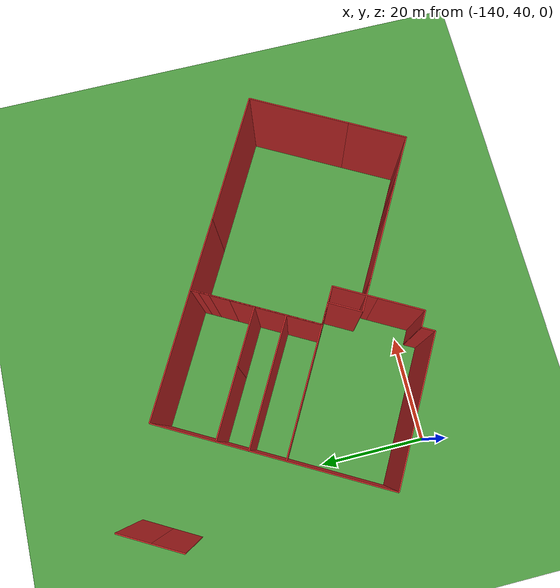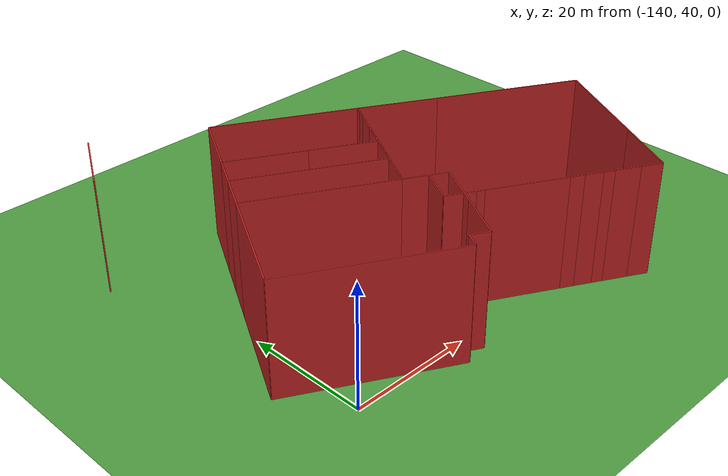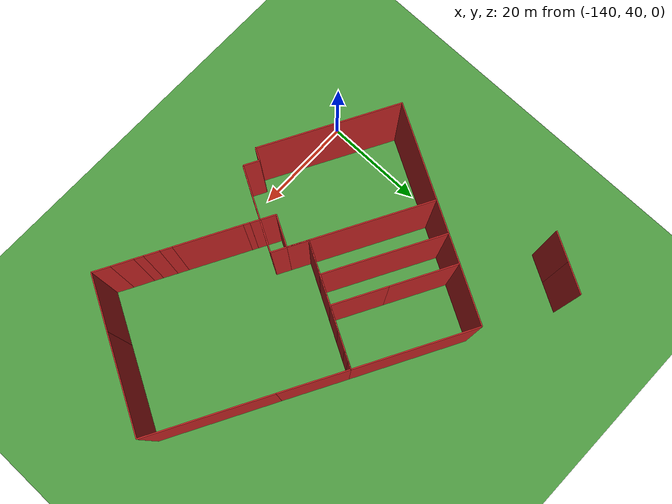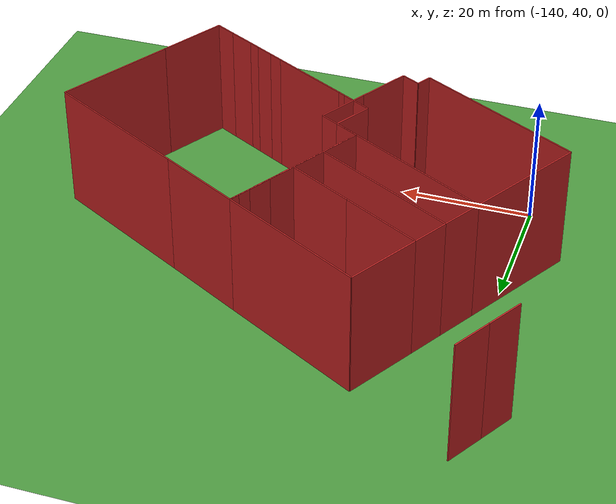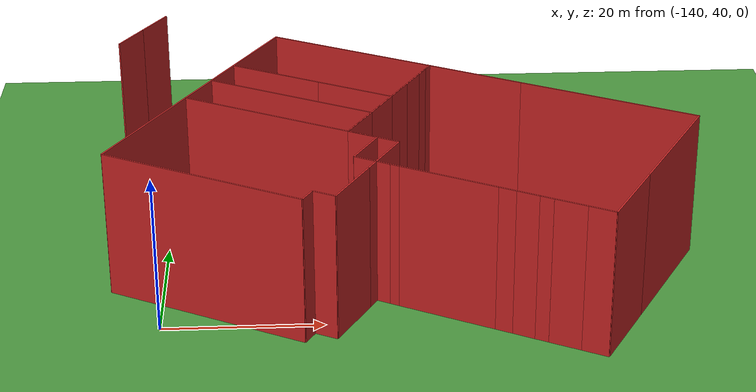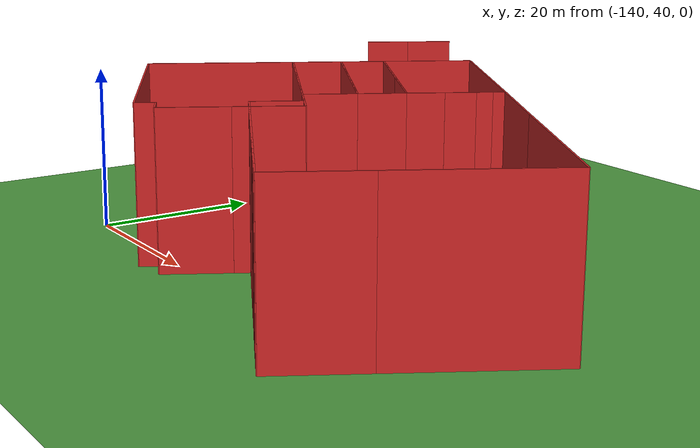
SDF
<sdf version="1.4">
 <world name="default">
  <model name="ground">
   <static>true</static>
   <link name="link">
    <collision name="collision">
     <geometry><plane><size>10000 10000</size><normal>0 0 1</normal></plane></geometry>
     <surface><friction><ode><mu>100</mu><mu2>50</mu2></ode></friction></surface>
    </collision>
    <visual name="visual">
     <pose>0 0 -1 0 0 0</pose>
     <geometry><plane><normal>0 0 1</normal><size>10000 10000</size></plane></geometry>
     <material>
      <script><uri>file://media/materials/scripts/gazebo.material</uri><name>Gazebo/Grass</name></script>
     </material>
    </visual>
   </link>
  </model>
  <include><uri>model://sun</uri></include>
  <model name="office_building_266170557">
   <static>true</static>
   <pose>-143.218481475 92.8817894273 0.0 0 0 0</pose>
   <link name="office_building_266170557_0">
    <collision name="office_building_266170557_0">
     <geometry><box><size>6.12261118915 0.2 20.0</size></box></geometry>
    </collision>
    <visual name="office_building_266170557_0">
     <geometry><box><size>6.12261118915 0.2 20.0</size></box></geometry>
     <material>
      <script><uri>file://media/materials/scripts/gazebo.material</uri><name>Gazebo/Red</name></script>
     </material>
    </visual>
    <pose>0.0 0.0 9.0 0 0 1.0624477169</pose>
   </link>
  </model>
  <model name="office_building_266170802">
   <static>true</static>
   <pose>-116.339171166 74.1470060557 0.0 0 0 0</pose>
   <link name="office_building_266170802_0">
    <collision name="office_building_266170802_0">
     <geometry><box><size>11.5167518871 0.2 20.0</size></box></geometry>
    </collision>
    <visual name="office_building_266170802_0">
     <geometry><box><size>11.5167518871 0.2 20.0</size></box></geometry>
     <material>
      <script><uri>file://media/materials/scripts/gazebo.material</uri><name>Gazebo/Red</name></script>
     </material>
    </visual>
    <pose>-12.4129806976 7.59554542883 9.0 0 0 -2.07680924051</pose>
   </link>
   <link name="office_building_266170802_1">
    <collision name="office_building_266170802_1">
     <geometry><box><size>23.5856436769 0.2 20.0</size></box></geometry>
    </collision>
    <visual name="office_building_266170802_1">
     <geometry><box><size>23.5856436769 0.2 20.0</size></box></geometry>
     <material>
      <script><uri>file://media/materials/scripts/gazebo.material</uri><name>Gazebo/Red</name></script>
     </material>
    </visual>
    <pose>0.719133637422 6.96370672885 9.0 0 0 2.64016030013</pose>
   </link>
   <link name="office_building_266170802_2">
    <collision name="office_building_266170802_2">
     <geometry><box><size>1.4721142379 0.2 20.0</size></box></geometry>
    </collision>
    <visual name="office_building_266170802_2">
     <geometry><box><size>1.4721142379 0.2 20.0</size></box></geometry>
     <material>
      <script><uri>file://media/materials/scripts/gazebo.material</uri><name>Gazebo/Red</name></script>
     </material>
    </visual>
    <pose>10.7043693283 0.650775992279 9.0 0 0 1.06623035552</pose>
   </link>
   <link name="office_building_266170802_3">
    <collision name="office_building_266170802_3">
     <geometry><box><size>1.93353271804 0.2 20.0</size></box></geometry>
    </collision>
    <visual name="office_building_266170802_3">
     <geometry><box><size>1.93353271804 0.2 20.0</size></box></geometry>
     <material>
      <script><uri>file://media/materials/scripts/gazebo.material</uri><name>Gazebo/Red</name></script>
     </material>
    </visual>
    <pose>9.88151195634 -0.840033664095 9.0 0 0 1.06662544754</pose>
   </link>
   <link name="office_building_266170802_4">
    <collision name="office_building_266170802_4">
     <geometry><box><size>3.68397356421 0.2 20.0</size></box></geometry>
    </collision>
    <visual name="office_building_266170802_4">
     <geometry><box><size>3.68397356421 0.2 20.0</size></box></geometry>
     <material>
      <script><uri>file://media/materials/scripts/gazebo.material</uri><name>Gazebo/Red</name></script>
     </material>
    </visual>
    <pose>8.52490999627 -3.29944930305 9.0 0 0 1.06678363676</pose>
   </link>
   <link name="office_building_266170802_5">
    <collision name="office_building_266170802_5">
     <geometry><box><size>4.44922070025 0.2 20.0</size></box></geometry>
    </collision>
    <visual name="office_building_266170802_5">
     <geometry><box><size>4.44922070025 0.2 20.0</size></box></geometry>
     <material>
      <script><uri>file://media/materials/scripts/gazebo.material</uri><name>Gazebo/Red</name></script>
     </material>
    </visual>
    <pose>6.55672662293 -6.85802302474 9.0 0 0 1.06460150268</pose>
   </link>
   <link name="office_building_266170802_6">
    <collision name="office_building_266170802_6">
     <geometry><box><size>10.7073042722 0.2 20.0</size></box></geometry>
    </collision>
    <visual name="office_building_266170802_6">
     <geometry><box><size>10.7073042722 0.2 20.0</size></box></geometry>
     <material>
      <script><uri>file://media/materials/scripts/gazebo.material</uri><name>Gazebo/Red</name></script>
     </material>
    </visual>
    <pose>0.785715901424 -6.22626526592 9.0 0 0 -0.502282057918</pose>
   </link>
   <link name="office_building_266170802_7">
    <collision name="office_building_266170802_7">
     <geometry><box><size>12.8904997095 0.2 20.0</size></box></geometry>
    </collision>
    <visual name="office_building_266170802_7">
     <geometry><box><size>12.8904997095 0.2 20.0</size></box></geometry>
     <material>
      <script><uri>file://media/materials/scripts/gazebo.material</uri><name>Gazebo/Red</name></script>
     </material>
    </visual>
    <pose>-9.55535768837 -0.545043187873 9.0 0 0 -0.502443556537</pose>
   </link>
  </model>
  <model name="1212 6th Avenue">
   <static>true</static>
   <pose>-102.326432184 51.6100749471 0.0 0 0 0</pose>
   <link name="1212 6th Avenue_0">
    <collision name="1212 6th Avenue_0">
     <geometry><box><size>6.16480153279 0.2 20.0</size></box></geometry>
    </collision>
    <visual name="1212 6th Avenue_0">
     <geometry><box><size>6.16480153279 0.2 20.0</size></box></geometry>
     <material>
      <script><uri>file://media/materials/scripts/gazebo.material</uri><name>Gazebo/Red</name></script>
     </material>
    </visual>
    <pose>-9.70785518075 -2.90156265504 9.0 0 0 -2.07739142506</pose>
   </link>
   <link name="1212 6th Avenue_1">
    <collision name="1212 6th Avenue_1">
     <geometry><box><size>3.00726751724 0.2 20.0</size></box></geometry>
    </collision>
    <visual name="1212 6th Avenue_1">
     <geometry><box><size>3.00726751724 0.2 20.0</size></box></geometry>
     <material>
      <script><uri>file://media/materials/scripts/gazebo.material</uri><name>Gazebo/Red</name></script>
     </material>
    </visual>
    <pose>-9.52992042886 0.518055684194 9.0 0 0 -0.502640377054</pose>
   </link>
   <link name="1212 6th Avenue_2">
    <collision name="1212 6th Avenue_2">
     <geometry><box><size>4.02213964382 0.2 20.0</size></box></geometry>
    </collision>
    <visual name="1212 6th Avenue_2">
     <geometry><box><size>4.02213964382 0.2 20.0</size></box></geometry>
     <material>
      <script><uri>file://media/materials/scripts/gazebo.material</uri><name>Gazebo/Red</name></script>
     </material>
    </visual>
    <pose>-12.6100077357 2.21104221868 9.0 0 0 -0.502532380567</pose>
   </link>
   <link name="1212 6th Avenue_3">
    <collision name="1212 6th Avenue_3">
     <geometry><box><size>6.37538716918 0.2 20.0</size></box></geometry>
    </collision>
    <visual name="1212 6th Avenue_3">
     <geometry><box><size>6.37538716918 0.2 20.0</size></box></geometry>
     <material>
      <script><uri>file://media/materials/scripts/gazebo.material</uri><name>Gazebo/Red</name></script>
     </material>
    </visual>
    <pose>-12.8268090729 5.96757175642 9.0 0 0 -2.07701594326</pose>
   </link>
   <link name="1212 6th Avenue_4">
    <collision name="1212 6th Avenue_4">
     <geometry><box><size>5.68524694427 0.2 20.0</size></box></geometry>
    </collision>
    <visual name="1212 6th Avenue_4">
     <geometry><box><size>5.68524694427 0.2 20.0</size></box></geometry>
     <material>
      <script><uri>file://media/materials/scripts/gazebo.material</uri><name>Gazebo/Red</name></script>
     </material>
    </visual>
    <pose>-9.90789936754 11.2443750294 9.0 0 0 -2.07499102133</pose>
   </link>
   <link name="1212 6th Avenue_5">
    <collision name="1212 6th Avenue_5">
     <geometry><box><size>4.44922070025 0.2 20.0</size></box></geometry>
    </collision>
    <visual name="1212 6th Avenue_5">
     <geometry><box><size>4.44922070025 0.2 20.0</size></box></geometry>
     <material>
      <script><uri>file://media/materials/scripts/gazebo.material</uri><name>Gazebo/Red</name></script>
     </material>
    </visual>
    <pose>-7.45601235952 15.6789080839 9.0 0 0 -2.07699115091</pose>
   </link>
   <link name="1212 6th Avenue_6">
    <collision name="1212 6th Avenue_6">
     <geometry><box><size>3.68397356421 0.2 20.0</size></box></geometry>
    </collision>
    <visual name="1212 6th Avenue_6">
     <geometry><box><size>3.68397356421 0.2 20.0</size></box></geometry>
     <material>
      <script><uri>file://media/materials/scripts/gazebo.material</uri><name>Gazebo/Red</name></script>
     </material>
    </visual>
    <pose>-5.48782898618 19.2374818056 9.0 0 0 -2.07480901683</pose>
   </link>
   <link name="1212 6th Avenue_7">
    <collision name="1212 6th Avenue_7">
     <geometry><box><size>1.93353271804 0.2 20.0</size></box></geometry>
    </collision>
    <visual name="1212 6th Avenue_7">
     <geometry><box><size>1.93353271804 0.2 20.0</size></box></geometry>
     <material>
      <script><uri>file://media/materials/scripts/gazebo.material</uri><name>Gazebo/Red</name></script>
     </material>
    </visual>
    <pose>-4.13122702611 21.6968974446 9.0 0 0 -2.07496720605</pose>
   </link>
   <link name="1212 6th Avenue_8">
    <collision name="1212 6th Avenue_8">
     <geometry><box><size>1.4721142379 0.2 20.0</size></box></geometry>
    </collision>
    <visual name="1212 6th Avenue_8">
     <geometry><box><size>1.4721142379 0.2 20.0</size></box></geometry>
     <material>
      <script><uri>file://media/materials/scripts/gazebo.material</uri><name>Gazebo/Red</name></script>
     </material>
    </visual>
    <pose>-3.3083696542 23.1877071009 9.0 0 0 -2.07536229807</pose>
   </link>
   <link name="1212 6th Avenue_9">
    <collision name="1212 6th Avenue_9">
     <geometry><box><size>13.2826875626 0.2 20.0</size></box></geometry>
    </collision>
    <visual name="1212 6th Avenue_9">
     <geometry><box><size>13.2826875626 0.2 20.0</size></box></geometry>
     <material>
      <script><uri>file://media/materials/scripts/gazebo.material</uri><name>Gazebo/Red</name></script>
     </material>
    </visual>
    <pose>2.8573641101 20.6145147465 9.0 0 0 2.6358365647</pose>
   </link>
   <link name="1212 6th Avenue_10">
    <collision name="1212 6th Avenue_10">
     <geometry><box><size>24.3016994273 0.2 20.0</size></box></geometry>
    </collision>
    <visual name="1212 6th Avenue_10">
     <geometry><box><size>24.3016994273 0.2 20.0</size></box></geometry>
     <material>
      <script><uri>file://media/materials/scripts/gazebo.material</uri><name>Gazebo/Red</name></script>
     </material>
    </visual>
    <pose>19.3196916127 11.5515629699 9.0 0 0 2.63971621954</pose>
   </link>
   <link name="1212 6th Avenue_11">
    <collision name="1212 6th Avenue_11">
     <geometry><box><size>18.8698656204 0.2 20.0</size></box></geometry>
    </collision>
    <visual name="1212 6th Avenue_11">
     <geometry><box><size>18.8698656204 0.2 20.0</size></box></geometry>
     <material>
      <script><uri>file://media/materials/scripts/gazebo.material</uri><name>Gazebo/Red</name></script>
     </material>
    </visual>
    <pose>25.401949364 -2.54804657187 9.0 0 0 1.06513307824</pose>
   </link>
   <link name="1212 6th Avenue_12">
    <collision name="1212 6th Avenue_12">
     <geometry><box><size>10.8721904393 0.2 20.0</size></box></geometry>
    </collision>
    <visual name="1212 6th Avenue_12">
     <geometry><box><size>10.8721904393 0.2 20.0</size></box></geometry>
     <material>
      <script><uri>file://media/materials/scripts/gazebo.material</uri><name>Gazebo/Red</name></script>
     </material>
    </visual>
    <pose>18.1964401394 -15.5568167231 9.0 0 0 1.06467782981</pose>
   </link>
   <link name="1212 6th Avenue_13">
    <collision name="1212 6th Avenue_13">
     <geometry><box><size>3.45788490094 0.2 20.0</size></box></geometry>
    </collision>
    <visual name="1212 6th Avenue_13">
     <geometry><box><size>3.45788490094 0.2 20.0</size></box></geometry>
     <material>
      <script><uri>file://media/materials/scripts/gazebo.material</uri><name>Gazebo/Red</name></script>
     </material>
    </visual>
    <pose>14.0488498284 -19.473340654 9.0 0 0 -0.506049771757</pose>
   </link>
   <link name="1212 6th Avenue_14">
    <collision name="1212 6th Avenue_14">
     <geometry><box><size>4.15944759532 0.2 20.0</size></box></geometry>
    </collision>
    <visual name="1212 6th Avenue_14">
     <geometry><box><size>4.15944759532 0.2 20.0</size></box></geometry>
     <material>
      <script><uri>file://media/materials/scripts/gazebo.material</uri><name>Gazebo/Red</name></script>
     </material>
    </visual>
    <pose>10.7074504735 -17.6456037478 9.0 0 0 -0.495950512647</pose>
   </link>
   <link name="1212 6th Avenue_15">
    <collision name="1212 6th Avenue_15">
     <geometry><box><size>1.78214057233 0.2 20.0</size></box></geometry>
    </collision>
    <visual name="1212 6th Avenue_15">
     <geometry><box><size>1.78214057233 0.2 20.0</size></box></geometry>
     <material>
      <script><uri>file://media/materials/scripts/gazebo.material</uri><name>Gazebo/Red</name></script>
     </material>
    </visual>
    <pose>8.09993606765 -16.222157963 9.0 0 0 -0.508421424312</pose>
   </link>
   <link name="1212 6th Avenue_16">
    <collision name="1212 6th Avenue_16">
     <geometry><box><size>2.90903100322 0.2 20.0</size></box></geometry>
    </collision>
    <visual name="1212 6th Avenue_16">
     <geometry><box><size>2.90903100322 0.2 20.0</size></box></geometry>
     <material>
      <script><uri>file://media/materials/scripts/gazebo.material</uri><name>Gazebo/Red</name></script>
     </material>
    </visual>
    <pose>6.04839522323 -15.0850850851 9.0 0 0 -0.50468216913</pose>
   </link>
   <link name="1212 6th Avenue_17">
    <collision name="1212 6th Avenue_17">
     <geometry><box><size>2.25788614301 0.2 20.0</size></box></geometry>
    </collision>
    <visual name="1212 6th Avenue_17">
     <geometry><box><size>2.25788614301 0.2 20.0</size></box></geometry>
     <material>
      <script><uri>file://media/materials/scripts/gazebo.material</uri><name>Gazebo/Red</name></script>
     </material>
    </visual>
    <pose>3.7855847176 -13.8385156362 9.0 0 0 -0.502044570796</pose>
   </link>
   <link name="1212 6th Avenue_18">
    <collision name="1212 6th Avenue_18">
     <geometry><box><size>12.8961868752 0.2 20.0</size></box></geometry>
    </collision>
    <visual name="1212 6th Avenue_18">
     <geometry><box><size>12.8961868752 0.2 20.0</size></box></geometry>
     <material>
      <script><uri>file://media/materials/scripts/gazebo.material</uri><name>Gazebo/Red</name></script>
     </material>
    </visual>
    <pose>-2.85829200667 -10.1956621169 9.0 0 0 -0.501450405149</pose>
   </link>
   <link name="1212 6th Avenue_19">
    <collision name="1212 6th Avenue_19">
     <geometry><box><size>1.22356588199 0.2 20.0</size></box></geometry>
    </collision>
    <visual name="1212 6th Avenue_19">
     <geometry><box><size>1.22356588199 0.2 20.0</size></box></geometry>
     <material>
      <script><uri>file://media/materials/scripts/gazebo.material</uri><name>Gazebo/Red</name></script>
     </material>
    </visual>
    <pose>-9.04627049532 -6.7970679473 9.0 0 0 -0.510657108474</pose>
   </link>
   <link name="1212 6th Avenue_20">
    <collision name="1212 6th Avenue_20">
     <geometry><box><size>1.85682300124 0.2 20.0</size></box></geometry>
    </collision>
    <visual name="1212 6th Avenue_20">
     <geometry><box><size>1.85682300124 0.2 20.0</size></box></geometry>
     <material>
      <script><uri>file://media/materials/scripts/gazebo.material</uri><name>Gazebo/Red</name></script>
     </material>
    </visual>
    <pose>-10.3917245178 -6.04743879662 9.0 0 0 -0.506782321875</pose>
   </link>
  </model>
  <model name="office_building_266170746">
   <static>true</static>
   <pose>-147.521818686 85.1539735428 0.0 0 0 0</pose>
  </model>
  <model name="office_building_266170747">
   <static>true</static>
   <pose>-146.115172891 87.6807805172 0.0 0 0 0</pose>
   <link name="office_building_266170747_0">
    <collision name="office_building_266170747_0">
     <geometry><box><size>5.78391074606 0.2 20.0</size></box></geometry>
    </collision>
    <visual name="office_building_266170747_0">
     <geometry><box><size>5.78391074606 0.2 20.0</size></box></geometry>
     <material>
      <script><uri>file://media/materials/scripts/gazebo.material</uri><name>Gazebo/Red</name></script>
     </material>
    </visual>
    <pose>0.0 0.0 9.0 0 0 1.06283207194</pose>
   </link>
  </model>
  <model name="office_building_266170745">
   <static>true</static>
   <pose>-124.139541739 69.3976072612 0.0 0 0 0</pose>
   <link name="office_building_266170745_0">
    <collision name="office_building_266170745_0">
     <geometry><box><size>5.67788592046 0.2 20.0</size></box></geometry>
    </collision>
    <visual name="office_building_266170745_0">
     <geometry><box><size>5.67788592046 0.2 20.0</size></box></geometry>
     <material>
      <script><uri>file://media/materials/scripts/gazebo.material</uri><name>Gazebo/Red</name></script>
     </material>
    </visual>
    <pose>-8.77694077766 4.82349338411 9.0 0 0 -2.07570801039</pose>
   </link>
   <link name="office_building_266170745_1">
    <collision name="office_building_266170745_1">
     <geometry><box><size>12.8904997095 0.2 20.0</size></box></geometry>
    </collision>
    <visual name="office_building_266170745_1">
     <geometry><box><size>12.8904997095 0.2 20.0</size></box></geometry>
     <material>
      <script><uri>file://media/materials/scripts/gazebo.material</uri><name>Gazebo/Red</name></script>
     </material>
    </visual>
    <pose>-1.75498711624 4.20435560671 9.0 0 0 2.63914909705</pose>
   </link>
   <link name="office_building_266170745_2">
    <collision name="office_building_266170745_2">
     <geometry><box><size>10.7073042722 0.2 20.0</size></box></geometry>
    </collision>
    <visual name="office_building_266170745_2">
     <geometry><box><size>10.7073042722 0.2 20.0</size></box></geometry>
     <material>
      <script><uri>file://media/materials/scripts/gazebo.material</uri><name>Gazebo/Red</name></script>
     </material>
    </visual>
    <pose>8.58608647355 -1.47686647133 9.0 0 0 2.63931059567</pose>
   </link>
   <link name="office_building_266170745_3">
    <collision name="office_building_266170745_3">
     <geometry><box><size>5.68524694427 0.2 20.0</size></box></geometry>
    </collision>
    <visual name="office_building_266170745_3">
     <geometry><box><size>5.68524694427 0.2 20.0</size></box></geometry>
     <material>
      <script><uri>file://media/materials/scripts/gazebo.material</uri><name>Gazebo/Red</name></script>
     </material>
    </visual>
    <pose>11.905210187 -6.54315728463 9.0 0 0 1.06660163226</pose>
   </link>
   <link name="office_building_266170745_4">
    <collision name="office_building_266170745_4">
     <geometry><box><size>23.6018625988 0.2 20.0</size></box></geometry>
    </collision>
    <visual name="office_building_266170745_4">
     <geometry><box><size>23.6018625988 0.2 20.0</size></box></geometry>
     <material>
      <script><uri>file://media/materials/scripts/gazebo.material</uri><name>Gazebo/Red</name></script>
     </material>
    </visual>
    <pose>0.190854304109 -3.34662691277 9.0 0 0 -0.502682537083</pose>
   </link>
  </model>
  <model name="office_building_266170743">
   <static>true</static>
   <pose>-127.871663777 63.8425756632 0.0 0 0 0</pose>
   <link name="office_building_266170743_0">
    <collision name="office_building_266170743_0">
     <geometry><box><size>6.37540081311 0.2 20.0</size></box></geometry>
    </collision>
    <visual name="office_building_266170743_0">
     <geometry><box><size>6.37540081311 0.2 20.0</size></box></geometry>
     <material>
      <script><uri>file://media/materials/scripts/gazebo.material</uri><name>Gazebo/Red</name></script>
     </material>
    </visual>
    <pose>-7.96373651811 5.10592279883 9.0 0 0 -2.07701629493</pose>
   </link>
   <link name="office_building_266170743_1">
    <collision name="office_building_266170743_1">
     <geometry><box><size>23.6018625988 0.2 20.0</size></box></geometry>
    </collision>
    <visual name="office_building_266170743_1">
     <geometry><box><size>23.6018625988 0.2 20.0</size></box></geometry>
     <material>
      <script><uri>file://media/materials/scripts/gazebo.material</uri><name>Gazebo/Red</name></script>
     </material>
    </visual>
    <pose>3.92297634231 2.20840468516 9.0 0 0 2.63891011651</pose>
   </link>
   <link name="office_building_266170743_2">
    <collision name="office_building_266170743_2">
     <geometry><box><size>6.37538716918 0.2 20.0</size></box></geometry>
    </collision>
    <visual name="office_building_266170743_2">
     <geometry><box><size>6.37538716918 0.2 20.0</size></box></geometry>
     <material>
      <script><uri>file://media/materials/scripts/gazebo.material</uri><name>Gazebo/Red</name></script>
     </material>
    </visual>
    <pose>12.7184225199 -6.26492895973 9.0 0 0 1.06457671033</pose>
   </link>
   <link name="office_building_266170743_3">
    <collision name="office_building_266170743_3">
     <geometry><box><size>23.6018648891 0.2 20.0</size></box></geometry>
    </collision>
    <visual name="office_building_266170743_3">
     <geometry><box><size>23.6018648891 0.2 20.0</size></box></geometry>
     <material>
      <script><uri>file://media/materials/scripts/gazebo.material</uri><name>Gazebo/Red</name></script>
     </material>
    </visual>
    <pose>0.831709659502 -3.36741084606 9.0 0 0 -0.502681959335</pose>
   </link>
  </model>
  <model name="office_building_266170771">
   <static>true</static>
   <pose>-121.711794491 46.326483315 0.0 0 0 0</pose>
   <link name="office_building_266170771_0">
    <collision name="office_building_266170771_0">
     <geometry><box><size>3.05436737962 0.2 20.0</size></box></geometry>
    </collision>
    <visual name="office_building_266170771_0">
     <geometry><box><size>3.05436737962 0.2 20.0</size></box></geometry>
     <material>
      <script><uri>file://media/materials/scripts/gazebo.material</uri><name>Gazebo/Red</name></script>
     </material>
    </visual>
    <pose>1.80484130628 -8.6685214249 9.0 0 0 -0.500456863896</pose>
   </link>
   <link name="office_building_266170771_1">
    <collision name="office_building_266170771_1">
     <geometry><box><size>2.43519851923 0.2 20.0</size></box></geometry>
    </collision>
    <visual name="office_building_266170771_1">
     <geometry><box><size>2.43519851923 0.2 20.0</size></box></geometry>
     <material>
      <script><uri>file://media/materials/scripts/gazebo.material</uri><name>Gazebo/Red</name></script>
     </material>
    </visual>
    <pose>-0.124392318273 -9.00120917013 9.0 0 0 1.06555709559</pose>
   </link>
   <link name="office_building_266170771_2">
    <collision name="office_building_266170771_2">
     <geometry><box><size>27.572863121 0.2 20.0</size></box></geometry>
    </collision>
    <visual name="office_building_266170771_2">
     <geometry><box><size>27.572863121 0.2 20.0</size></box></geometry>
     <material>
      <script><uri>file://media/materials/scripts/gazebo.material</uri><name>Gazebo/Red</name></script>
     </material>
    </visual>
    <pose>-12.795021044 -3.42528546288 9.0 0 0 -0.502632515947</pose>
   </link>
   <link name="office_building_266170771_3">
    <collision name="office_building_266170771_3">
     <geometry><box><size>18.9981029378 0.2 20.0</size></box></geometry>
    </collision>
    <visual name="office_building_266170771_3">
     <geometry><box><size>18.9981029378 0.2 20.0</size></box></geometry>
     <material>
      <script><uri>file://media/materials/scripts/gazebo.material</uri><name>Gazebo/Red</name></script>
     </material>
    </visual>
    <pose>-20.2727762838 11.5251068744 9.0 0 0 -2.0767376171</pose>
   </link>
   <link name="office_building_266170771_4">
    <collision name="office_building_266170771_4">
     <geometry><box><size>23.6018648891 0.2 20.0</size></box></geometry>
    </collision>
    <visual name="office_building_266170771_4">
     <geometry><box><size>23.6018648891 0.2 20.0</size></box></geometry>
     <material>
      <script><uri>file://media/materials/scripts/gazebo.material</uri><name>Gazebo/Red</name></script>
     </material>
    </visual>
    <pose>-5.32815962659 14.1486815022 9.0 0 0 2.63891069425</pose>
   </link>
   <link name="office_building_266170771_5">
    <collision name="office_building_266170771_5">
     <geometry><box><size>4.02213964382 0.2 20.0</size></box></geometry>
    </collision>
    <visual name="office_building_266170771_5">
     <geometry><box><size>4.02213964382 0.2 20.0</size></box></geometry>
     <material>
      <script><uri>file://media/materials/scripts/gazebo.material</uri><name>Gazebo/Red</name></script>
     </material>
    </visual>
    <pose>6.77535457098 7.49463385078 9.0 0 0 2.63906027302</pose>
   </link>
   <link name="office_building_266170771_6">
    <collision name="office_building_266170771_6">
     <geometry><box><size>6.17216942526 0.2 20.0</size></box></geometry>
    </collision>
    <visual name="office_building_266170771_6">
     <geometry><box><size>6.17216942526 0.2 20.0</size></box></geometry>
     <material>
      <script><uri>file://media/materials/scripts/gazebo.material</uri><name>Gazebo/Red</name></script>
     </material>
    </visual>
    <pose>7.04219702594 3.8265410552 9.0 0 0 1.06486329735</pose>
   </link>
   <link name="office_building_266170771_7">
    <collision name="office_building_266170771_7">
     <geometry><box><size>3.0032193553 0.2 20.0</size></box></geometry>
    </collision>
    <visual name="office_building_266170771_7">
     <geometry><box><size>3.0032193553 0.2 20.0</size></box></geometry>
     <material>
      <script><uri>file://media/materials/scripts/gazebo.material</uri><name>Gazebo/Red</name></script>
     </material>
    </visual>
    <pose>6.86426227405 0.406922715968 9.0 0 0 2.64141052191</pose>
   </link>
   <link name="office_building_266170771_8">
    <collision name="office_building_266170771_8">
     <geometry><box><size>1.98115125847 0.2 20.0</size></box></geometry>
    </collision>
    <visual name="office_building_266170771_8">
     <geometry><box><size>1.98115125847 0.2 20.0</size></box></geometry>
     <material>
      <script><uri>file://media/materials/scripts/gazebo.material</uri><name>Gazebo/Red</name></script>
     </material>
    </visual>
    <pose>7.70377411887 -1.18076341256 9.0 0 0 1.06706977794</pose>
   </link>
   <link name="office_building_266170771_9">
    <collision name="office_building_266170771_9">
     <geometry><box><size>8.40954100894 0.2 20.0</size></box></geometry>
    </collision>
    <visual name="office_building_266170771_9">
     <geometry><box><size>8.40954100894 0.2 20.0</size></box></geometry>
     <material>
      <script><uri>file://media/materials/scripts/gazebo.material</uri><name>Gazebo/Red</name></script>
     </material>
    </visual>
    <pose>5.18518353753 -5.724802014 9.0 0 0 1.0641249023</pose>
   </link>
  </model>
 </world>
</sdf>
